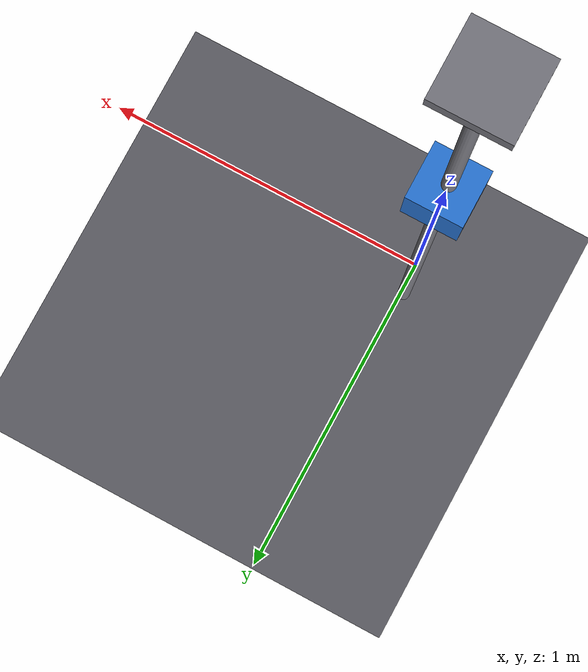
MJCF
<mujoco model="vertical_slide_joint">
    <compiler angle="radian"/>
    <option gravity="0 0 -9.81" timestep="0.001" integrator="RK4">
        <flag energy="enable"/>
    </option>

    <default>
        <geom contype="0" conaffinity="0"/>
    </default>

    <worldbody>
        <!-- Vertical rail along Z axis -->
        <geom name="rail" type="capsule" size="0.02"
              fromto="0 0 -0.5  0 0 2.0" rgba="0.50 0.50 0.53 1"/>

        <!-- Overhead mount at top of rail -->
        <geom name="mount" type="box" size="0.10 0.10 0.02"
              pos="0 0 2.0" rgba="0.45 0.45 0.48 1"/>

        <!-- Ground plane (visual reference) -->
        <geom name="ground" type="plane" size="1.0 1.0 0.01"
              pos="0 0 -0.5" rgba="0.35 0.35 0.38 1"/>

        <!-- The sliding block -->
        <body name="block" pos="0 0 1.0">
            <joint name="slide" type="slide" axis="0 0 1"
                   stiffness="40" damping="0.3" armature="0.1"
                   limited="true" range="-1.5 1.0"/>
            <inertial pos="0 0 0" mass="1.0" diaginertia="0.01 0.01 0.01"/>
            <geom name="block" type="box" size="0.08 0.08 0.08"
                  rgba="0.15 0.45 0.82 1"
                  contype="1" conaffinity="1"/>
        </body>
    </worldbody>
</mujoco>
